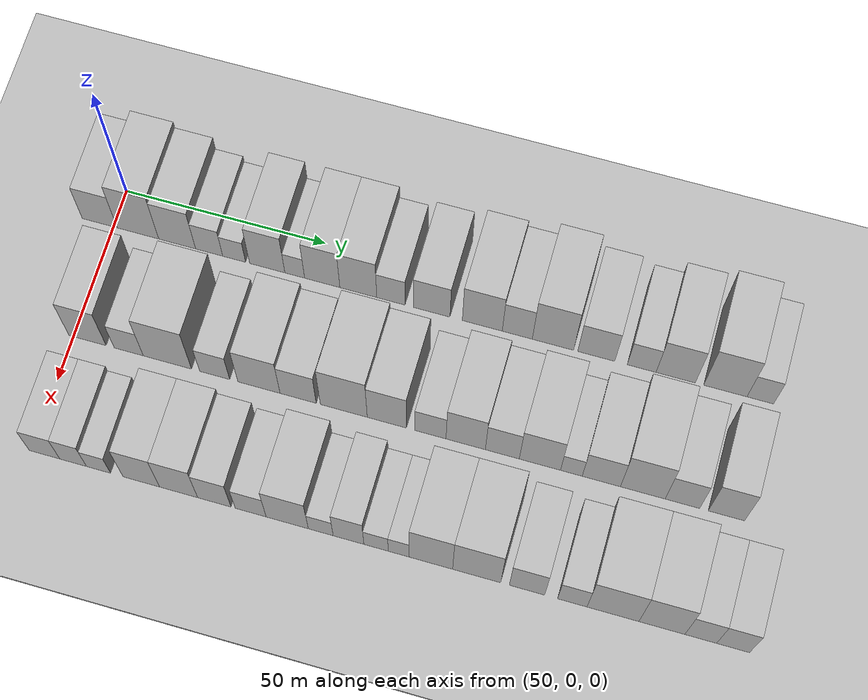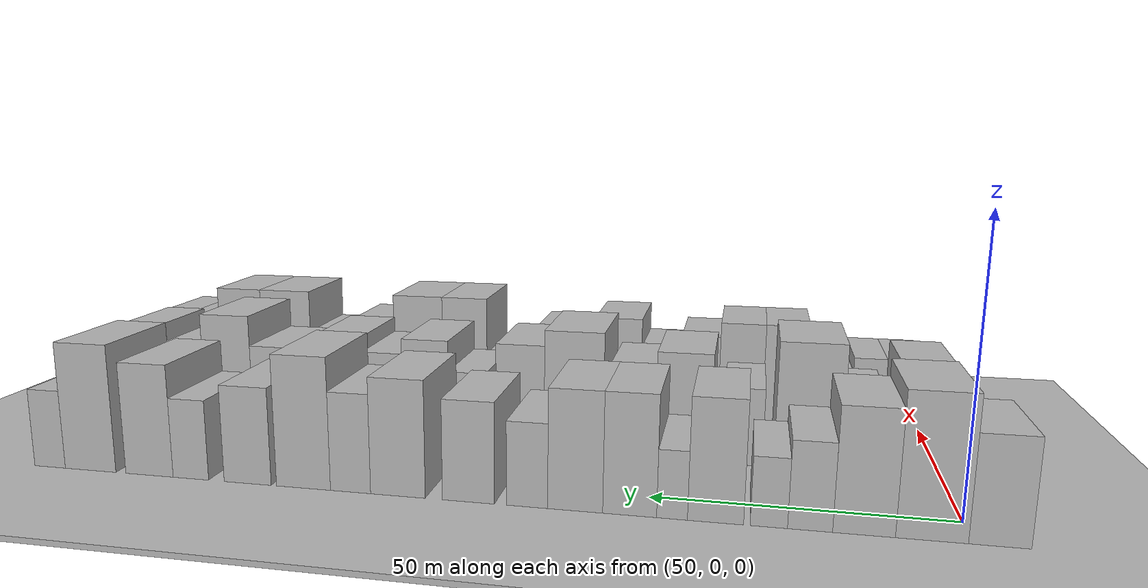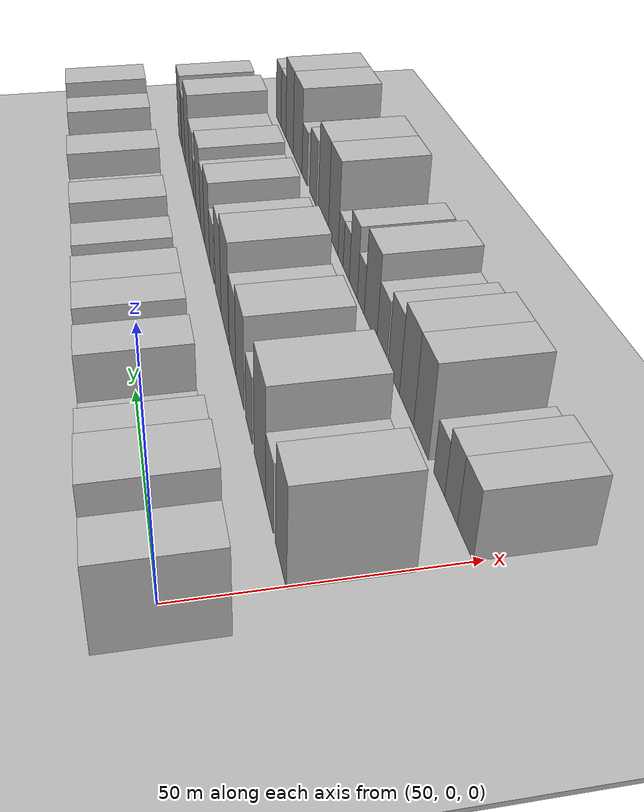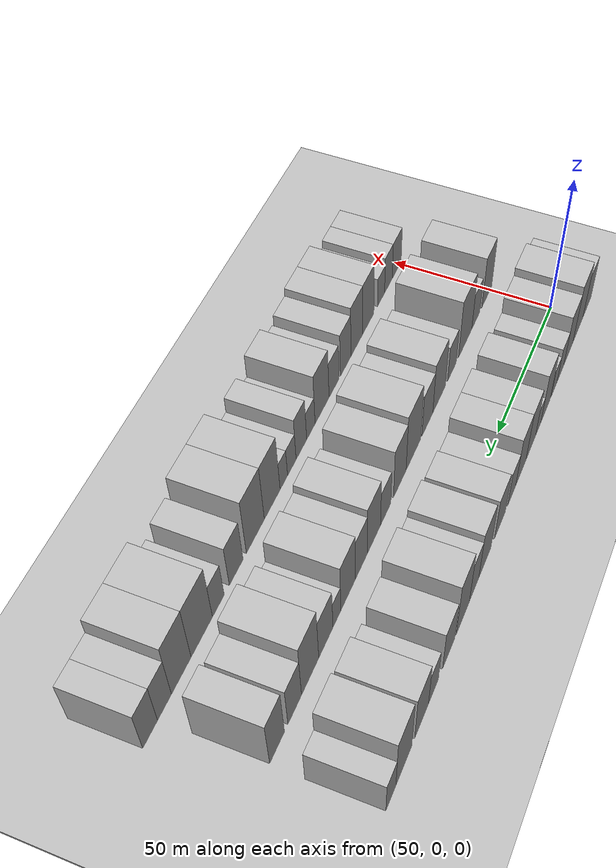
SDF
<sdf version="1.6">
 <world name="default">
  <include><name>ground_plane_1</name><uri>model://HANNAS_ground_plane</uri></include>
  <include>
   <name>ground_plane_2</name>
   <uri>model://HANNAS_ground_plane</uri>
   <pose>100 0 0  0 0 0</pose>
  </include>
  <model name="building_42">
   <static>1</static>
   <pose>50.0000 -3.3659 0 0.000000 0.000000 0.000000</pose>
   <link name="link">
    <pose>0 0 9.00 0 0 0</pose>
    <collision name="collision"><geometry><box><size>20.0000 8.8512 18.0000</size></box></geometry></collision>
    <visual name="visual">
     <cast_shadows>0</cast_shadows>
     <geometry><box><size>20.0000 8.8512 18.0000</size></box></geometry>
     <material>
      <script>
       <uri>model://HANNAS_wall/materials/scripts</uri>
       <uri>model://HANNAS_wall/materials/textures</uri>
       <name>vrc/HANNAS_wall</name>
      </script>
     </material>
    </visual>
   </link>
  </model>
  <model name="building_43">
   <static>1</static>
   <pose>50.0000 6.2937 0 0.000000 0.000000 0.000000</pose>
   <link name="link">
    <pose>0 0 12.00 0 0 0</pose>
    <collision name="collision"><geometry><box><size>20.0000 10.4679 24.0000</size></box></geometry></collision>
    <visual name="visual">
     <cast_shadows>0</cast_shadows>
     <geometry><box><size>20.0000 10.4679 24.0000</size></box></geometry>
     <material>
      <script>
       <uri>model://HANNAS_wall/materials/scripts</uri>
       <uri>model://HANNAS_wall/materials/textures</uri>
       <name>vrc/HANNAS_wall</name>
      </script>
     </material>
    </visual>
   </link>
  </model>
  <model name="building_44">
   <static>1</static>
   <pose>50.0000 16.1524 0 0.000000 0.000000 0.000000</pose>
   <link name="link">
    <pose>0 0 10.50 0 0 0</pose>
    <collision name="collision"><geometry><box><size>20.0000 9.2495 21.0000</size></box></geometry></collision>
    <visual name="visual">
     <cast_shadows>0</cast_shadows>
     <geometry><box><size>20.0000 9.2495 21.0000</size></box></geometry>
     <material>
      <script>
       <uri>model://HANNAS_wall/materials/scripts</uri>
       <uri>model://HANNAS_wall/materials/textures</uri>
       <name>vrc/HANNAS_wall</name>
      </script>
     </material>
    </visual>
   </link>
  </model>
  <model name="building_45">
   <static>1</static>
   <pose>50.0000 24.1634 0 0.000000 0.000000 0.000000</pose>
   <link name="link">
    <pose>0 0 7.50 0 0 0</pose>
    <collision name="collision"><geometry><box><size>20.0000 6.7723 15.0000</size></box></geometry></collision>
    <visual name="visual">
     <cast_shadows>0</cast_shadows>
     <geometry><box><size>20.0000 6.7723 15.0000</size></box></geometry>
     <material>
      <script>
       <uri>model://HANNAS_wall/materials/scripts</uri>
       <uri>model://HANNAS_wall/materials/textures</uri>
       <name>vrc/HANNAS_wall</name>
      </script>
     </material>
    </visual>
   </link>
  </model>
  <model name="building_46">
   <static>1</static>
   <pose>50.0000 30.4063 0 0.000000 0.000000 0.000000</pose>
   <link name="link">
    <pose>0 0 6.00 0 0 0</pose>
    <collision name="collision"><geometry><box><size>20.0000 5.7136 12.0000</size></box></geometry></collision>
    <visual name="visual">
     <cast_shadows>0</cast_shadows>
     <geometry><box><size>20.0000 5.7136 12.0000</size></box></geometry>
     <material>
      <script>
       <uri>model://HANNAS_wall/materials/scripts</uri>
       <uri>model://HANNAS_wall/materials/textures</uri>
       <name>vrc/HANNAS_wall</name>
      </script>
     </material>
    </visual>
   </link>
  </model>
  <model name="building_47">
   <static>1</static>
   <pose>50.0000 38.6431 0 0.000000 0.000000 0.000000</pose>
   <link name="link">
    <pose>0 0 10.50 0 0 0</pose>
    <collision name="collision"><geometry><box><size>20.0000 8.7599 21.0000</size></box></geometry></collision>
    <visual name="visual">
     <cast_shadows>0</cast_shadows>
     <geometry><box><size>20.0000 8.7599 21.0000</size></box></geometry>
     <material>
      <script>
       <uri>model://HANNAS_wall/materials/scripts</uri>
       <uri>model://HANNAS_wall/materials/textures</uri>
       <name>vrc/HANNAS_wall</name>
      </script>
     </material>
    </visual>
   </link>
  </model>
  <model name="building_48">
   <static>1</static>
   <pose>50.0000 45.4695 0 0.000000 0.000000 0.000000</pose>
   <link name="link">
    <pose>0 0 6.00 0 0 0</pose>
    <collision name="collision"><geometry><box><size>20.0000 4.8929 12.0000</size></box></geometry></collision>
    <visual name="visual">
     <cast_shadows>0</cast_shadows>
     <geometry><box><size>20.0000 4.8929 12.0000</size></box></geometry>
     <material>
      <script>
       <uri>model://HANNAS_wall/materials/scripts</uri>
       <uri>model://HANNAS_wall/materials/textures</uri>
       <name>vrc/HANNAS_wall</name>
      </script>
     </material>
    </visual>
   </link>
  </model>
  <model name="building_49">
   <static>1</static>
   <pose>50.0000 52.2723 0 0.000000 0.000000 0.000000</pose>
   <link name="link">
    <pose>0 0 10.50 0 0 0</pose>
    <collision name="collision"><geometry><box><size>20.0000 8.7125 21.0000</size></box></geometry></collision>
    <visual name="visual">
     <cast_shadows>0</cast_shadows>
     <geometry><box><size>20.0000 8.7125 21.0000</size></box></geometry>
     <material>
      <script>
       <uri>model://HANNAS_wall/materials/scripts</uri>
       <uri>model://HANNAS_wall/materials/textures</uri>
       <name>vrc/HANNAS_wall</name>
      </script>
     </material>
    </visual>
   </link>
  </model>
  <model name="building_50">
   <static>1</static>
   <pose>50.0000 61.1767 0 0.000000 0.000000 0.000000</pose>
   <link name="link">
    <pose>0 0 10.50 0 0 0</pose>
    <collision name="collision"><geometry><box><size>20.0000 9.0963 21.0000</size></box></geometry></collision>
    <visual name="visual">
     <cast_shadows>0</cast_shadows>
     <geometry><box><size>20.0000 9.0963 21.0000</size></box></geometry>
     <material>
      <script>
       <uri>model://HANNAS_wall/materials/scripts</uri>
       <uri>model://HANNAS_wall/materials/textures</uri>
       <name>vrc/HANNAS_wall</name>
      </script>
     </material>
    </visual>
   </link>
  </model>
  <model name="building_51">
   <static>1</static>
   <pose>50.0000 69.1998 0 0.000000 0.000000 0.000000</pose>
   <link name="link">
    <pose>0 0 7.50 0 0 0</pose>
    <collision name="collision"><geometry><box><size>20.0000 6.9499 15.0000</size></box></geometry></collision>
    <visual name="visual">
     <cast_shadows>0</cast_shadows>
     <geometry><box><size>20.0000 6.9499 15.0000</size></box></geometry>
     <material>
      <script>
       <uri>model://HANNAS_wall/materials/scripts</uri>
       <uri>model://HANNAS_wall/materials/textures</uri>
       <name>vrc/HANNAS_wall</name>
      </script>
     </material>
    </visual>
   </link>
  </model>
  <model name="building_52">
   <static>1</static>
   <pose>50.0000 79.1705 0 0.000000 0.000000 0.000000</pose>
   <link name="link">
    <pose>0 0 9.00 0 0 0</pose>
    <collision name="collision"><geometry><box><size>20.0000 8.9916 18.0000</size></box></geometry></collision>
    <visual name="visual">
     <cast_shadows>0</cast_shadows>
     <geometry><box><size>20.0000 8.9916 18.0000</size></box></geometry>
     <material>
      <script>
       <uri>model://HANNAS_wall/materials/scripts</uri>
       <uri>model://HANNAS_wall/materials/textures</uri>
       <name>vrc/HANNAS_wall</name>
      </script>
     </material>
    </visual>
   </link>
  </model>
  <model name="building_53">
   <static>1</static>
   <pose>50.0000 91.5251 0 0.000000 0.000000 0.000000</pose>
   <link name="link">
    <pose>0 0 10.50 0 0 0</pose>
    <collision name="collision"><geometry><box><size>20.0000 9.7175 21.0000</size></box></geometry></collision>
    <visual name="visual">
     <cast_shadows>0</cast_shadows>
     <geometry><box><size>20.0000 9.7175 21.0000</size></box></geometry>
     <material>
      <script>
       <uri>model://HANNAS_wall/materials/scripts</uri>
       <uri>model://HANNAS_wall/materials/textures</uri>
       <name>vrc/HANNAS_wall</name>
      </script>
     </material>
    </visual>
   </link>
  </model>
  <model name="building_54">
   <static>1</static>
   <pose>50.0000 100.0256 0 0.000000 0.000000 0.000000</pose>
   <link name="link">
    <pose>0 0 9.00 0 0 0</pose>
    <collision name="collision"><geometry><box><size>20.0000 7.2835 18.0000</size></box></geometry></collision>
    <visual name="visual">
     <cast_shadows>0</cast_shadows>
     <geometry><box><size>20.0000 7.2835 18.0000</size></box></geometry>
     <material>
      <script>
       <uri>model://HANNAS_wall/materials/scripts</uri>
       <uri>model://HANNAS_wall/materials/textures</uri>
       <name>vrc/HANNAS_wall</name>
      </script>
     </material>
    </visual>
   </link>
  </model>
  <model name="building_55">
   <static>1</static>
   <pose>50.0000 108.6634 0 0.000000 0.000000 0.000000</pose>
   <link name="link">
    <pose>0 0 12.00 0 0 0</pose>
    <collision name="collision"><geometry><box><size>20.0000 9.9921 24.0000</size></box></geometry></collision>
    <visual name="visual">
     <cast_shadows>0</cast_shadows>
     <geometry><box><size>20.0000 9.9921 24.0000</size></box></geometry>
     <material>
      <script>
       <uri>model://HANNAS_wall/materials/scripts</uri>
       <uri>model://HANNAS_wall/materials/textures</uri>
       <name>vrc/HANNAS_wall</name>
      </script>
     </material>
    </visual>
   </link>
  </model>
  <model name="building_56">
   <static>1</static>
   <pose>50.0000 119.1177 0 0.000000 0.000000 0.000000</pose>
   <link name="link">
    <pose>0 0 9.00 0 0 0</pose>
    <collision name="collision"><geometry><box><size>20.0000 8.9166 18.0000</size></box></geometry></collision>
    <visual name="visual">
     <cast_shadows>0</cast_shadows>
     <geometry><box><size>20.0000 8.9166 18.0000</size></box></geometry>
     <material>
      <script>
       <uri>model://HANNAS_wall/materials/scripts</uri>
       <uri>model://HANNAS_wall/materials/textures</uri>
       <name>vrc/HANNAS_wall</name>
      </script>
     </material>
    </visual>
   </link>
  </model>
  <model name="building_57">
   <static>1</static>
   <pose>50.0000 130.0279 0 0.000000 0.000000 0.000000</pose>
   <link name="link">
    <pose>0 0 7.50 0 0 0</pose>
    <collision name="collision"><geometry><box><size>20.0000 6.9039 15.0000</size></box></geometry></collision>
    <visual name="visual">
     <cast_shadows>0</cast_shadows>
     <geometry><box><size>20.0000 6.9039 15.0000</size></box></geometry>
     <material>
      <script>
       <uri>model://HANNAS_wall/materials/scripts</uri>
       <uri>model://HANNAS_wall/materials/textures</uri>
       <name>vrc/HANNAS_wall</name>
      </script>
     </material>
    </visual>
   </link>
  </model>
  <model name="building_58">
   <static>1</static>
   <pose>50.0000 138.1656 0 0.000000 0.000000 0.000000</pose>
   <link name="link">
    <pose>0 0 10.50 0 0 0</pose>
    <collision name="collision"><geometry><box><size>20.0000 9.3716 21.0000</size></box></geometry></collision>
    <visual name="visual">
     <cast_shadows>0</cast_shadows>
     <geometry><box><size>20.0000 9.3716 21.0000</size></box></geometry>
     <material>
      <script>
       <uri>model://HANNAS_wall/materials/scripts</uri>
       <uri>model://HANNAS_wall/materials/textures</uri>
       <name>vrc/HANNAS_wall</name>
      </script>
     </material>
    </visual>
   </link>
  </model>
  <model name="building_59">
   <static>1</static>
   <pose>50.0000 150.0005 0 0.000000 0.000000 0.000000</pose>
   <link name="link">
    <pose>0 0 12.00 0 0 0</pose>
    <collision name="collision"><geometry><box><size>20.0000 10.2981 24.0000</size></box></geometry></collision>
    <visual name="visual">
     <cast_shadows>0</cast_shadows>
     <geometry><box><size>20.0000 10.2981 24.0000</size></box></geometry>
     <material>
      <script>
       <uri>model://HANNAS_wall/materials/scripts</uri>
       <uri>model://HANNAS_wall/materials/textures</uri>
       <name>vrc/HANNAS_wall</name>
      </script>
     </material>
    </visual>
   </link>
  </model>
  <model name="building_60">
   <static>1</static>
   <pose>50.0000 158.3060 0 0.000000 0.000000 0.000000</pose>
   <link name="link">
    <pose>0 0 7.50 0 0 0</pose>
    <collision name="collision"><geometry><box><size>20.0000 6.3129 15.0000</size></box></geometry></collision>
    <visual name="visual">
     <cast_shadows>0</cast_shadows>
     <geometry><box><size>20.0000 6.3129 15.0000</size></box></geometry>
     <material>
      <script>
       <uri>model://HANNAS_wall/materials/scripts</uri>
       <uri>model://HANNAS_wall/materials/textures</uri>
       <name>vrc/HANNAS_wall</name>
      </script>
     </material>
    </visual>
   </link>
  </model>
  <model name="building_119">
   <static>1</static>
   <pose>79.0000 3.6770 0 0.000000 0.000000 0.000000</pose>
   <link name="link">
    <pose>0 0 10.50 0 0 0</pose>
    <collision name="collision"><geometry><box><size>20.0000 9.1977 21.0000</size></box></geometry></collision>
    <visual name="visual">
     <cast_shadows>0</cast_shadows>
     <geometry><box><size>20.0000 9.1977 21.0000</size></box></geometry>
     <material>
      <script>
       <uri>model://HANNAS_wall/materials/scripts</uri>
       <uri>model://HANNAS_wall/materials/textures</uri>
       <name>vrc/HANNAS_wall</name>
      </script>
     </material>
    </visual>
   </link>
  </model>
  <model name="building_120">
   <static>1</static>
   <pose>79.0000 13.8615 0 0.000000 0.000000 0.000000</pose>
   <link name="link">
    <pose>0 0 7.50 0 0 0</pose>
    <collision name="collision"><geometry><box><size>20.0000 7.1713 15.0000</size></box></geometry></collision>
    <visual name="visual">
     <cast_shadows>0</cast_shadows>
     <geometry><box><size>20.0000 7.1713 15.0000</size></box></geometry>
     <material>
      <script>
       <uri>model://HANNAS_wall/materials/scripts</uri>
       <uri>model://HANNAS_wall/materials/textures</uri>
       <name>vrc/HANNAS_wall</name>
      </script>
     </material>
    </visual>
   </link>
  </model>
  <model name="building_121">
   <static>1</static>
   <pose>79.0000 23.3644 0 0.000000 0.000000 0.000000</pose>
   <link name="link">
    <pose>0 0 12.00 0 0 0</pose>
    <collision name="collision"><geometry><box><size>20.0000 11.8346 24.0000</size></box></geometry></collision>
    <visual name="visual">
     <cast_shadows>0</cast_shadows>
     <geometry><box><size>20.0000 11.8346 24.0000</size></box></geometry>
     <material>
      <script>
       <uri>model://HANNAS_wall/materials/scripts</uri>
       <uri>model://HANNAS_wall/materials/textures</uri>
       <name>vrc/HANNAS_wall</name>
      </script>
     </material>
    </visual>
   </link>
  </model>
  <model name="building_122">
   <static>1</static>
   <pose>79.0000 34.9454 0 0.000000 0.000000 0.000000</pose>
   <link name="link">
    <pose>0 0 7.50 0 0 0</pose>
    <collision name="collision"><geometry><box><size>20.0000 7.3276 15.0000</size></box></geometry></collision>
    <visual name="visual">
     <cast_shadows>0</cast_shadows>
     <geometry><box><size>20.0000 7.3276 15.0000</size></box></geometry>
     <material>
      <script>
       <uri>model://HANNAS_wall/materials/scripts</uri>
       <uri>model://HANNAS_wall/materials/textures</uri>
       <name>vrc/HANNAS_wall</name>
      </script>
     </material>
    </visual>
   </link>
  </model>
  <model name="building_123">
   <static>1</static>
   <pose>79.0000 45.7378 0 0.000000 0.000000 0.000000</pose>
   <link name="link">
    <pose>0 0 10.50 0 0 0</pose>
    <collision name="collision"><geometry><box><size>20.0000 10.2572 21.0000</size></box></geometry></collision>
    <visual name="visual">
     <cast_shadows>0</cast_shadows>
     <geometry><box><size>20.0000 10.2572 21.0000</size></box></geometry>
     <material>
      <script>
       <uri>model://HANNAS_wall/materials/scripts</uri>
       <uri>model://HANNAS_wall/materials/textures</uri>
       <name>vrc/HANNAS_wall</name>
      </script>
     </material>
    </visual>
   </link>
  </model>
  <model name="building_124">
   <static>1</static>
   <pose>79.0000 55.2541 0 0.000000 0.000000 0.000000</pose>
   <link name="link">
    <pose>0 0 9.00 0 0 0</pose>
    <collision name="collision"><geometry><box><size>20.0000 8.7753 18.0000</size></box></geometry></collision>
    <visual name="visual">
     <cast_shadows>0</cast_shadows>
     <geometry><box><size>20.0000 8.7753 18.0000</size></box></geometry>
     <material>
      <script>
       <uri>model://HANNAS_wall/materials/scripts</uri>
       <uri>model://HANNAS_wall/materials/textures</uri>
       <name>vrc/HANNAS_wall</name>
      </script>
     </material>
    </visual>
   </link>
  </model>
  <model name="building_125">
   <static>1</static>
   <pose>79.0000 66.2986 0 0.000000 0.000000 0.000000</pose>
   <link name="link">
    <pose>0 0 12.00 0 0 0</pose>
    <collision name="collision"><geometry><box><size>20.0000 11.3137 24.0000</size></box></geometry></collision>
    <visual name="visual">
     <cast_shadows>0</cast_shadows>
     <geometry><box><size>20.0000 11.3137 24.0000</size></box></geometry>
     <material>
      <script>
       <uri>model://HANNAS_wall/materials/scripts</uri>
       <uri>model://HANNAS_wall/materials/textures</uri>
       <name>vrc/HANNAS_wall</name>
      </script>
     </material>
    </visual>
   </link>
  </model>
  <model name="building_126">
   <static>1</static>
   <pose>79.0000 76.6638 0 0.000000 0.000000 0.000000</pose>
   <link name="link">
    <pose>0 0 10.50 0 0 0</pose>
    <collision name="collision"><geometry><box><size>20.0000 9.4169 21.0000</size></box></geometry></collision>
    <visual name="visual">
     <cast_shadows>0</cast_shadows>
     <geometry><box><size>20.0000 9.4169 21.0000</size></box></geometry>
     <material>
      <script>
       <uri>model://HANNAS_wall/materials/scripts</uri>
       <uri>model://HANNAS_wall/materials/textures</uri>
       <name>vrc/HANNAS_wall</name>
      </script>
     </material>
    </visual>
   </link>
  </model>
  <model name="building_127">
   <static>1</static>
   <pose>79.0000 87.0997 0 0.000000 0.000000 0.000000</pose>
   <link name="link">
    <pose>0 0 7.50 0 0 0</pose>
    <collision name="collision"><geometry><box><size>20.0000 7.4548 15.0000</size></box></geometry></collision>
    <visual name="visual">
     <cast_shadows>0</cast_shadows>
     <geometry><box><size>20.0000 7.4548 15.0000</size></box></geometry>
     <material>
      <script>
       <uri>model://HANNAS_wall/materials/scripts</uri>
       <uri>model://HANNAS_wall/materials/textures</uri>
       <name>vrc/HANNAS_wall</name>
      </script>
     </material>
    </visual>
   </link>
  </model>
  <model name="building_128">
   <static>1</static>
   <pose>79.0000 95.5127 0 0.000000 0.000000 0.000000</pose>
   <link name="link">
    <pose>0 0 10.50 0 0 0</pose>
    <collision name="collision"><geometry><box><size>20.0000 9.3712 21.0000</size></box></geometry></collision>
    <visual name="visual">
     <cast_shadows>0</cast_shadows>
     <geometry><box><size>20.0000 9.3712 21.0000</size></box></geometry>
     <material>
      <script>
       <uri>model://HANNAS_wall/materials/scripts</uri>
       <uri>model://HANNAS_wall/materials/textures</uri>
       <name>vrc/HANNAS_wall</name>
      </script>
     </material>
    </visual>
   </link>
  </model>
  <model name="building_129">
   <static>1</static>
   <pose>79.0000 104.2390 0 0.000000 0.000000 0.000000</pose>
   <link name="link">
    <pose>0 0 9.00 0 0 0</pose>
    <collision name="collision"><geometry><box><size>20.0000 8.0815 18.0000</size></box></geometry></collision>
    <visual name="visual">
     <cast_shadows>0</cast_shadows>
     <geometry><box><size>20.0000 8.0815 18.0000</size></box></geometry>
     <material>
      <script>
       <uri>model://HANNAS_wall/materials/scripts</uri>
       <uri>model://HANNAS_wall/materials/textures</uri>
       <name>vrc/HANNAS_wall</name>
      </script>
     </material>
    </visual>
   </link>
  </model>
  <model name="building_130">
   <static>1</static>
   <pose>79.0000 113.1533 0 0.000000 0.000000 0.000000</pose>
   <link name="link">
    <pose>0 0 10.50 0 0 0</pose>
    <collision name="collision"><geometry><box><size>20.0000 9.7470 21.0000</size></box></geometry></collision>
    <visual name="visual">
     <cast_shadows>0</cast_shadows>
     <geometry><box><size>20.0000 9.7470 21.0000</size></box></geometry>
     <material>
      <script>
       <uri>model://HANNAS_wall/materials/scripts</uri>
       <uri>model://HANNAS_wall/materials/textures</uri>
       <name>vrc/HANNAS_wall</name>
      </script>
     </material>
    </visual>
   </link>
  </model>
  <model name="building_131">
   <static>1</static>
   <pose>79.0000 120.5847 0 0.000000 0.000000 0.000000</pose>
   <link name="link">
    <pose>0 0 6.00 0 0 0</pose>
    <collision name="collision"><geometry><box><size>20.0000 5.1157 12.0000</size></box></geometry></collision>
    <visual name="visual">
     <cast_shadows>0</cast_shadows>
     <geometry><box><size>20.0000 5.1157 12.0000</size></box></geometry>
     <material>
      <script>
       <uri>model://HANNAS_wall/materials/scripts</uri>
       <uri>model://HANNAS_wall/materials/textures</uri>
       <name>vrc/HANNAS_wall</name>
      </script>
     </material>
    </visual>
   </link>
  </model>
  <model name="building_132">
   <static>1</static>
   <pose>79.0000 127.6331 0 0.000000 0.000000 0.000000</pose>
   <link name="link">
    <pose>0 0 9.00 0 0 0</pose>
    <collision name="collision"><geometry><box><size>20.0000 8.9811 18.0000</size></box></geometry></collision>
    <visual name="visual">
     <cast_shadows>0</cast_shadows>
     <geometry><box><size>20.0000 8.9811 18.0000</size></box></geometry>
     <material>
      <script>
       <uri>model://HANNAS_wall/materials/scripts</uri>
       <uri>model://HANNAS_wall/materials/textures</uri>
       <name>vrc/HANNAS_wall</name>
      </script>
     </material>
    </visual>
   </link>
  </model>
  <model name="building_133">
   <static>1</static>
   <pose>79.0000 137.3799 0 0.000000 0.000000 0.000000</pose>
   <link name="link">
    <pose>0 0 12.00 0 0 0</pose>
    <collision name="collision"><geometry><box><size>20.0000 10.5125 24.0000</size></box></geometry></collision>
    <visual name="visual">
     <cast_shadows>0</cast_shadows>
     <geometry><box><size>20.0000 10.5125 24.0000</size></box></geometry>
     <material>
      <script>
       <uri>model://HANNAS_wall/materials/scripts</uri>
       <uri>model://HANNAS_wall/materials/textures</uri>
       <name>vrc/HANNAS_wall</name>
      </script>
     </material>
    </visual>
   </link>
  </model>
  <model name="building_134">
   <static>1</static>
   <pose>79.0000 146.6628 0 0.000000 0.000000 0.000000</pose>
   <link name="link">
    <pose>0 0 9.00 0 0 0</pose>
    <collision name="collision"><geometry><box><size>20.0000 8.0535 18.0000</size></box></geometry></collision>
    <visual name="visual">
     <cast_shadows>0</cast_shadows>
     <geometry><box><size>20.0000 8.0535 18.0000</size></box></geometry>
     <material>
      <script>
       <uri>model://HANNAS_wall/materials/scripts</uri>
       <uri>model://HANNAS_wall/materials/textures</uri>
       <name>vrc/HANNAS_wall</name>
      </script>
     </material>
    </visual>
   </link>
  </model>
  <model name="building_135">
   <static>1</static>
   <pose>79.0000 156.9074 0 0.000000 0.000000 0.000000</pose>
   <link name="link">
    <pose>0 0 10.50 0 0 0</pose>
    <collision name="collision"><geometry><box><size>20.0000 8.4357 21.0000</size></box></geometry></collision>
    <visual name="visual">
     <cast_shadows>0</cast_shadows>
     <geometry><box><size>20.0000 8.4357 21.0000</size></box></geometry>
     <material>
      <script>
       <uri>model://HANNAS_wall/materials/scripts</uri>
       <uri>model://HANNAS_wall/materials/textures</uri>
       <name>vrc/HANNAS_wall</name>
      </script>
     </material>
    </visual>
   </link>
  </model>
  <model name="building_193">
   <static>1</static>
   <pose>108.0000 3.3655 0 0.000000 0.000000 0.000000</pose>
   <link name="link">
    <pose>0 0 7.50 0 0 0</pose>
    <collision name="collision"><geometry><box><size>20.0000 7.4467 15.0000</size></box></geometry></collision>
    <visual name="visual">
     <cast_shadows>0</cast_shadows>
     <geometry><box><size>20.0000 7.4467 15.0000</size></box></geometry>
     <material>
      <script>
       <uri>model://HANNAS_wall/materials/scripts</uri>
       <uri>model://HANNAS_wall/materials/textures</uri>
       <name>vrc/HANNAS_wall</name>
      </script>
     </material>
    </visual>
   </link>
  </model>
  <model name="building_194">
   <static>1</static>
   <pose>108.0000 10.3203 0 0.000000 0.000000 0.000000</pose>
   <link name="link">
    <pose>0 0 7.50 0 0 0</pose>
    <collision name="collision"><geometry><box><size>20.0000 6.4629 15.0000</size></box></geometry></collision>
    <visual name="visual">
     <cast_shadows>0</cast_shadows>
     <geometry><box><size>20.0000 6.4629 15.0000</size></box></geometry>
     <material>
      <script>
       <uri>model://HANNAS_wall/materials/scripts</uri>
       <uri>model://HANNAS_wall/materials/textures</uri>
       <name>vrc/HANNAS_wall</name>
      </script>
     </material>
    </visual>
   </link>
  </model>
  <model name="building_195">
   <static>1</static>
   <pose>108.0000 16.4567 0 0.000000 0.000000 0.000000</pose>
   <link name="link">
    <pose>0 0 6.00 0 0 0</pose>
    <collision name="collision"><geometry><box><size>20.0000 5.8099 12.0000</size></box></geometry></collision>
    <visual name="visual">
     <cast_shadows>0</cast_shadows>
     <geometry><box><size>20.0000 5.8099 12.0000</size></box></geometry>
     <material>
      <script>
       <uri>model://HANNAS_wall/materials/scripts</uri>
       <uri>model://HANNAS_wall/materials/textures</uri>
       <name>vrc/HANNAS_wall</name>
      </script>
     </material>
    </visual>
   </link>
  </model>
  <model name="building_196">
   <static>1</static>
   <pose>108.0000 26.7716 0 0.000000 0.000000 0.000000</pose>
   <link name="link">
    <pose>0 0 10.50 0 0 0</pose>
    <collision name="collision"><geometry><box><size>20.0000 8.8200 21.0000</size></box></geometry></collision>
    <visual name="visual">
     <cast_shadows>0</cast_shadows>
     <geometry><box><size>20.0000 8.8200 21.0000</size></box></geometry>
     <material>
      <script>
       <uri>model://HANNAS_wall/materials/scripts</uri>
       <uri>model://HANNAS_wall/materials/textures</uri>
       <name>vrc/HANNAS_wall</name>
      </script>
     </material>
    </visual>
   </link>
  </model>
  <model name="building_197">
   <static>1</static>
   <pose>108.0000 35.7406 0 0.000000 0.000000 0.000000</pose>
   <link name="link">
    <pose>0 0 10.50 0 0 0</pose>
    <collision name="collision"><geometry><box><size>20.0000 9.1180 21.0000</size></box></geometry></collision>
    <visual name="visual">
     <cast_shadows>0</cast_shadows>
     <geometry><box><size>20.0000 9.1180 21.0000</size></box></geometry>
     <material>
      <script>
       <uri>model://HANNAS_wall/materials/scripts</uri>
       <uri>model://HANNAS_wall/materials/textures</uri>
       <name>vrc/HANNAS_wall</name>
      </script>
     </material>
    </visual>
   </link>
  </model>
  <model name="building_198">
   <static>1</static>
   <pose>108.0000 44.2844 0 0.000000 0.000000 0.000000</pose>
   <link name="link">
    <pose>0 0 9.00 0 0 0</pose>
    <collision name="collision"><geometry><box><size>20.0000 7.9695 18.0000</size></box></geometry></collision>
    <visual name="visual">
     <cast_shadows>0</cast_shadows>
     <geometry><box><size>20.0000 7.9695 18.0000</size></box></geometry>
     <material>
      <script>
       <uri>model://HANNAS_wall/materials/scripts</uri>
       <uri>model://HANNAS_wall/materials/textures</uri>
       <name>vrc/HANNAS_wall</name>
      </script>
     </material>
    </visual>
   </link>
  </model>
  <model name="building_199">
   <static>1</static>
   <pose>108.0000 52.9428 0 0.000000 0.000000 0.000000</pose>
   <link name="link">
    <pose>0 0 7.50 0 0 0</pose>
    <collision name="collision"><geometry><box><size>20.0000 7.3474 15.0000</size></box></geometry></collision>
    <visual name="visual">
     <cast_shadows>0</cast_shadows>
     <geometry><box><size>20.0000 7.3474 15.0000</size></box></geometry>
     <material>
      <script>
       <uri>model://HANNAS_wall/materials/scripts</uri>
       <uri>model://HANNAS_wall/materials/textures</uri>
       <name>vrc/HANNAS_wall</name>
      </script>
     </material>
    </visual>
   </link>
  </model>
  <model name="building_200">
   <static>1</static>
   <pose>108.0000 61.6209 0 0.000000 0.000000 0.000000</pose>
   <link name="link">
    <pose>0 0 10.50 0 0 0</pose>
    <collision name="collision"><geometry><box><size>20.0000 10.0089 21.0000</size></box></geometry></collision>
    <visual name="visual">
     <cast_shadows>0</cast_shadows>
     <geometry><box><size>20.0000 10.0089 21.0000</size></box></geometry>
     <material>
      <script>
       <uri>model://HANNAS_wall/materials/scripts</uri>
       <uri>model://HANNAS_wall/materials/textures</uri>
       <name>vrc/HANNAS_wall</name>
      </script>
     </material>
    </visual>
   </link>
  </model>
  <model name="building_201">
   <static>1</static>
   <pose>108.0000 69.5577 0 0.000000 0.000000 0.000000</pose>
   <link name="link">
    <pose>0 0 6.00 0 0 0</pose>
    <collision name="collision"><geometry><box><size>20.0000 5.8648 12.0000</size></box></geometry></collision>
    <visual name="visual">
     <cast_shadows>0</cast_shadows>
     <geometry><box><size>20.0000 5.8648 12.0000</size></box></geometry>
     <material>
      <script>
       <uri>model://HANNAS_wall/materials/scripts</uri>
       <uri>model://HANNAS_wall/materials/textures</uri>
       <name>vrc/HANNAS_wall</name>
      </script>
     </material>
    </visual>
   </link>
  </model>
  <model name="building_202">
   <static>1</static>
   <pose>108.0000 76.1098 0 0.000000 0.000000 0.000000</pose>
   <link name="link">
    <pose>0 0 9.00 0 0 0</pose>
    <collision name="collision"><geometry><box><size>20.0000 7.2394 18.0000</size></box></geometry></collision>
    <visual name="visual">
     <cast_shadows>0</cast_shadows>
     <geometry><box><size>20.0000 7.2394 18.0000</size></box></geometry>
     <material>
      <script>
       <uri>model://HANNAS_wall/materials/scripts</uri>
       <uri>model://HANNAS_wall/materials/textures</uri>
       <name>vrc/HANNAS_wall</name>
      </script>
     </material>
    </visual>
   </link>
  </model>
  <model name="building_203">
   <static>1</static>
   <pose>108.0000 82.5904 0 0.000000 0.000000 0.000000</pose>
   <link name="link">
    <pose>0 0 6.00 0 0 0</pose>
    <collision name="collision"><geometry><box><size>20.0000 5.7219 12.0000</size></box></geometry></collision>
    <visual name="visual">
     <cast_shadows>0</cast_shadows>
     <geometry><box><size>20.0000 5.7219 12.0000</size></box></geometry>
     <material>
      <script>
       <uri>model://HANNAS_wall/materials/scripts</uri>
       <uri>model://HANNAS_wall/materials/textures</uri>
       <name>vrc/HANNAS_wall</name>
      </script>
     </material>
    </visual>
   </link>
  </model>
  <model name="building_204">
   <static>1</static>
   <pose>108.0000 87.9148 0 0.000000 0.000000 0.000000</pose>
   <link name="link">
    <pose>0 0 6.00 0 0 0</pose>
    <collision name="collision"><geometry><box><size>20.0000 4.9270 12.0000</size></box></geometry></collision>
    <visual name="visual">
     <cast_shadows>0</cast_shadows>
     <geometry><box><size>20.0000 4.9270 12.0000</size></box></geometry>
     <material>
      <script>
       <uri>model://HANNAS_wall/materials/scripts</uri>
       <uri>model://HANNAS_wall/materials/textures</uri>
       <name>vrc/HANNAS_wall</name>
      </script>
     </material>
    </visual>
   </link>
  </model>
  <model name="building_205">
   <static>1</static>
   <pose>108.0000 95.4427 0 0.000000 0.000000 0.000000</pose>
   <link name="link">
    <pose>0 0 12.00 0 0 0</pose>
    <collision name="collision"><geometry><box><size>20.0000 10.1289 24.0000</size></box></geometry></collision>
    <visual name="visual">
     <cast_shadows>0</cast_shadows>
     <geometry><box><size>20.0000 10.1289 24.0000</size></box></geometry>
     <material>
      <script>
       <uri>model://HANNAS_wall/materials/scripts</uri>
       <uri>model://HANNAS_wall/materials/textures</uri>
       <name>vrc/HANNAS_wall</name>
      </script>
     </material>
    </visual>
   </link>
  </model>
  <model name="building_206">
   <static>1</static>
   <pose>108.0000 106.1050 0 0.000000 0.000000 0.000000</pose>
   <link name="link">
    <pose>0 0 12.00 0 0 0</pose>
    <collision name="collision"><geometry><box><size>20.0000 11.1957 24.0000</size></box></geometry></collision>
    <visual name="visual">
     <cast_shadows>0</cast_shadows>
     <geometry><box><size>20.0000 11.1957 24.0000</size></box></geometry>
     <material>
      <script>
       <uri>model://HANNAS_wall/materials/scripts</uri>
       <uri>model://HANNAS_wall/materials/textures</uri>
       <name>vrc/HANNAS_wall</name>
      </script>
     </material>
    </visual>
   </link>
  </model>
  <model name="building_207">
   <static>1</static>
   <pose>108.0000 117.7935 0 0.000000 0.000000 0.000000</pose>
   <link name="link">
    <pose>0 0 9.00 0 0 0</pose>
    <collision name="collision"><geometry><box><size>20.0000 8.1813 18.0000</size></box></geometry></collision>
    <visual name="visual">
     <cast_shadows>0</cast_shadows>
     <geometry><box><size>20.0000 8.1813 18.0000</size></box></geometry>
     <material>
      <script>
       <uri>model://HANNAS_wall/materials/scripts</uri>
       <uri>model://HANNAS_wall/materials/textures</uri>
       <name>vrc/HANNAS_wall</name>
      </script>
     </material>
    </visual>
   </link>
  </model>
  <model name="building_208">
   <static>1</static>
   <pose>108.0000 128.2651 0 0.000000 0.000000 0.000000</pose>
   <link name="link">
    <pose>0 0 7.50 0 0 0</pose>
    <collision name="collision"><geometry><box><size>20.0000 6.7617 15.0000</size></box></geometry></collision>
    <visual name="visual">
     <cast_shadows>0</cast_shadows>
     <geometry><box><size>20.0000 6.7617 15.0000</size></box></geometry>
     <material>
      <script>
       <uri>model://HANNAS_wall/materials/scripts</uri>
       <uri>model://HANNAS_wall/materials/textures</uri>
       <name>vrc/HANNAS_wall</name>
      </script>
     </material>
    </visual>
   </link>
  </model>
  <model name="building_209">
   <static>1</static>
   <pose>108.0000 137.6185 0 0.000000 0.000000 0.000000</pose>
   <link name="link">
    <pose>0 0 12.00 0 0 0</pose>
    <collision name="collision"><geometry><box><size>20.0000 11.9452 24.0000</size></box></geometry></collision>
    <visual name="visual">
     <cast_shadows>0</cast_shadows>
     <geometry><box><size>20.0000 11.9452 24.0000</size></box></geometry>
     <material>
      <script>
       <uri>model://HANNAS_wall/materials/scripts</uri>
       <uri>model://HANNAS_wall/materials/textures</uri>
       <name>vrc/HANNAS_wall</name>
      </script>
     </material>
    </visual>
   </link>
  </model>
  <model name="building_210">
   <static>1</static>
   <pose>108.0000 148.8455 0 0.000000 0.000000 0.000000</pose>
   <link name="link">
    <pose>0 0 12.00 0 0 0</pose>
    <collision name="collision"><geometry><box><size>20.0000 10.5090 24.0000</size></box></geometry></collision>
    <visual name="visual">
     <cast_shadows>0</cast_shadows>
     <geometry><box><size>20.0000 10.5090 24.0000</size></box></geometry>
     <material>
      <script>
       <uri>model://HANNAS_wall/materials/scripts</uri>
       <uri>model://HANNAS_wall/materials/textures</uri>
       <name>vrc/HANNAS_wall</name>
      </script>
     </material>
    </visual>
   </link>
  </model>
  <model name="building_211">
   <static>1</static>
   <pose>108.0000 157.7150 0 0.000000 0.000000 0.000000</pose>
   <link name="link">
    <pose>0 0 9.00 0 0 0</pose>
    <collision name="collision"><geometry><box><size>20.0000 7.2299 18.0000</size></box></geometry></collision>
    <visual name="visual">
     <cast_shadows>0</cast_shadows>
     <geometry><box><size>20.0000 7.2299 18.0000</size></box></geometry>
     <material>
      <script>
       <uri>model://HANNAS_wall/materials/scripts</uri>
       <uri>model://HANNAS_wall/materials/textures</uri>
       <name>vrc/HANNAS_wall</name>
      </script>
     </material>
    </visual>
   </link>
  </model>
  <model name="building_212">
   <static>1</static>
   <pose>108.0000 165.0757 0 0.000000 0.000000 0.000000</pose>
   <link name="link">
    <pose>0 0 9.00 0 0 0</pose>
    <collision name="collision"><geometry><box><size>20.0000 7.4916 18.0000</size></box></geometry></collision>
    <visual name="visual">
     <cast_shadows>0</cast_shadows>
     <geometry><box><size>20.0000 7.4916 18.0000</size></box></geometry>
     <material>
      <script>
       <uri>model://HANNAS_wall/materials/scripts</uri>
       <uri>model://HANNAS_wall/materials/textures</uri>
       <name>vrc/HANNAS_wall</name>
      </script>
     </material>
    </visual>
   </link>
  </model>
 </world>
</sdf>
